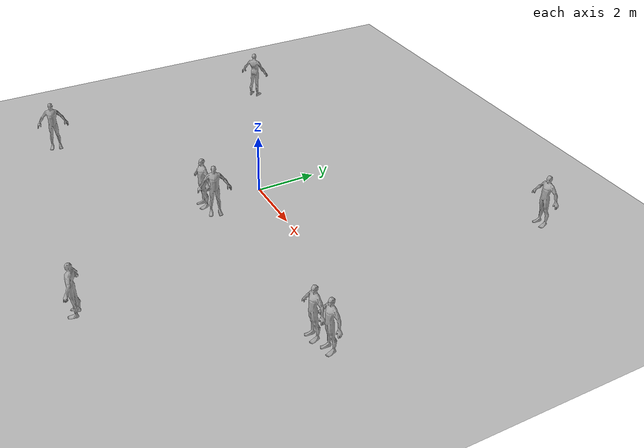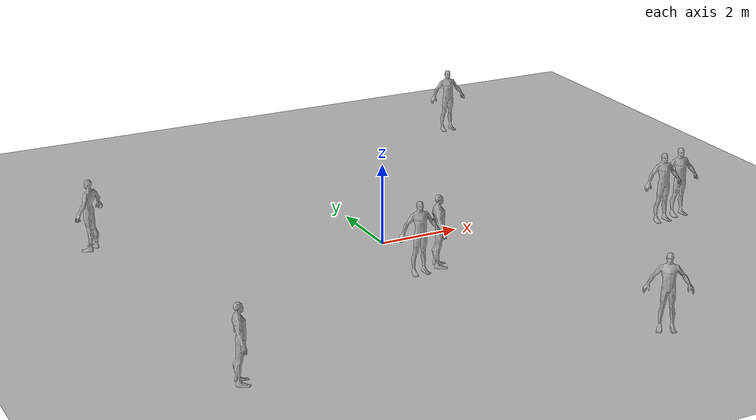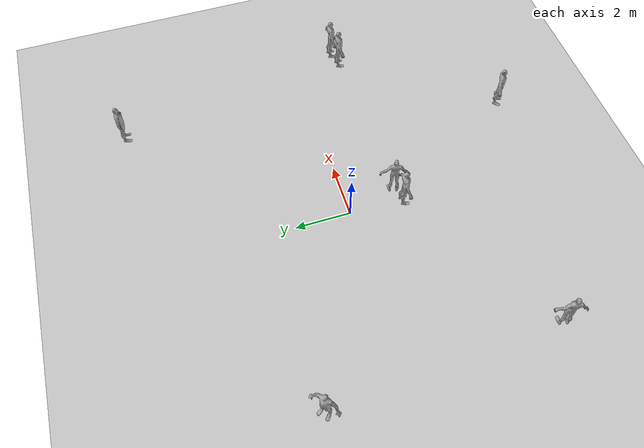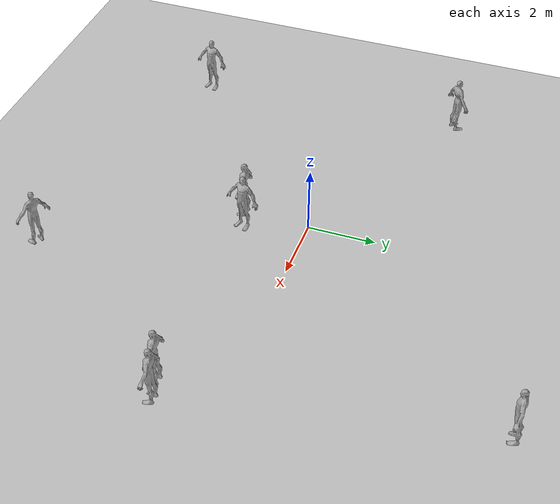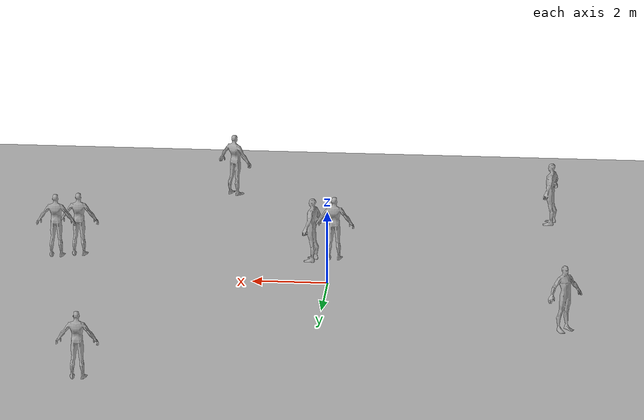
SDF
<sdf version="1.6">
 <world name="default">
  <light name="sun" type="directional">
   <pose>0 0 10 0 -0 0</pose>
   <diffuse>0.8 0.8 0.8 1</diffuse>
   <specular>0.2 0.2 0.2 1</specular>
   <attenuation>
    <range>1000</range>
    <constant>0.9</constant>
    <linear>0.01</linear>
    <quadratic>0.001</quadratic>
   </attenuation>
   <direction>-0.5 0.1 -0.9</direction>
  </light>
  <model name="ground_plane">
   <static>1</static>
   <link name="link">
    <collision name="collision">
     <geometry><plane><normal>0 0 1</normal><size>100 100</size></plane></geometry>
     <surface>
      <contact><collide_bitmask>65535</collide_bitmask></contact>
      <friction><ode><mu>100</mu><mu2>50</mu2></ode></friction>
     </surface>
    </collision>
    <visual name="visual">
     <cast_shadows>0</cast_shadows>
     <geometry><plane><normal>0 0 1</normal><size>100 100</size></plane></geometry>
     <material>
      <script><uri>file://media/materials/scripts/gazebo.material</uri><name>Gazebo/Grey</name></script>
     </material>
    </visual>
   </link>
  </model>
  <gravity>0 0 -9.8</gravity>
  <magnetic_field>6e-06 2.3e-05 -4.2e-05</magnetic_field>
  <atmosphere type="adiabatic"/>
  <physics name="default_physics" default="0" type="ode">
   <max_step_size>0.001</max_step_size>
   <real_time_factor>1</real_time_factor>
   <real_time_update_rate>1000</real_time_update_rate>
  </physics>
  <scene><ambient>0.4 0.4 0.4 1</ambient><background>0.7 0.7 0.7 1</background><shadows>1</shadows></scene>
  <audio><device>default</device></audio>
  <spherical_coordinates>
   <surface_model>EARTH_WGS84</surface_model>
   <latitude_deg>0</latitude_deg>
   <longitude_deg>0</longitude_deg>
   <elevation>0</elevation>
   <heading_deg>0</heading_deg>
  </spherical_coordinates>
  <model name="man">
   <link name="link_0">
    <inertial>
     <mass>1</mass>
     <inertia>
      <ixx>0.166667</ixx>
      <ixy>0</ixy>
      <ixz>0</ixz>
      <iyy>0.166667</iyy>
      <iyz>0</iyz>
      <izz>0.166667</izz>
     </inertia>
    </inertial>
    <visual name="visual">
     <geometry><mesh><uri>model://man/meshes/man.dae</uri><scale>1 1 1</scale></mesh></geometry>
     <material>
      <script>
       <uri>model://man/materials/scripts</uri>
       <uri>model://man/materials/textures</uri>
       <name>People/Man1</name>
      </script>
      <lighting>0</lighting>
     </material>
    </visual>
   </link>
   <static>1</static>
   <pose>-0.038174 -1.9887 0 0 -0 0</pose>
  </model>
  <model name="man_0">
   <link name="link_0">
    <inertial>
     <mass>1</mass>
     <inertia>
      <ixx>0.166667</ixx>
      <ixy>0</ixy>
      <ixz>0</ixz>
      <iyy>0.166667</iyy>
      <iyz>0</iyz>
      <izz>0.166667</izz>
     </inertia>
    </inertial>
    <visual name="visual">
     <geometry><mesh><uri>model://man/meshes/man.dae</uri><scale>1 1 1</scale></mesh></geometry>
     <material>
      <script>
       <uri>model://man/materials/scripts</uri>
       <uri>model://man/materials/textures</uri>
       <name>People/Man1</name>
      </script>
      <lighting>0</lighting>
     </material>
    </visual>
   </link>
   <static>1</static>
   <pose>0.552521 -1.81594 0 0 -0 1.25378</pose>
  </model>
  <model name="man_1">
   <link name="link_0">
    <inertial>
     <mass>1</mass>
     <inertia>
      <ixx>0.166667</ixx>
      <ixy>0</ixy>
      <ixz>0</ixz>
      <iyy>0.166667</iyy>
      <iyz>0</iyz>
      <izz>0.166667</izz>
     </inertia>
    </inertial>
    <visual name="visual">
     <geometry><mesh><uri>model://man/meshes/man.dae</uri><scale>1 1 1</scale></mesh></geometry>
     <material>
      <script>
       <uri>model://man/materials/scripts</uri>
       <uri>model://man/materials/textures</uri>
       <name>People/Man1</name>
      </script>
      <lighting>0</lighting>
     </material>
    </visual>
   </link>
   <static>1</static>
   <pose>5.69942 7.07186 0 0 -0 0</pose>
  </model>
  <model name="man_2">
   <link name="link_0">
    <inertial>
     <mass>1</mass>
     <inertia>
      <ixx>0.166667</ixx>
      <ixy>0</ixy>
      <ixz>0</ixz>
      <iyy>0.166667</iyy>
      <iyz>0</iyz>
      <izz>0.166667</izz>
     </inertia>
    </inertial>
    <visual name="visual">
     <geometry><mesh><uri>model://man/meshes/man.dae</uri><scale>1 1 1</scale></mesh></geometry>
     <material>
      <script>
       <uri>model://man/materials/scripts</uri>
       <uri>model://man/materials/textures</uri>
       <name>People/Man1</name>
      </script>
      <lighting>0</lighting>
     </material>
    </visual>
   </link>
   <static>1</static>
   <pose>-6.32759 2.87718 0 0 0 -2.41427</pose>
  </model>
  <model name="man_3">
   <link name="link_0">
    <inertial>
     <mass>1</mass>
     <inertia>
      <ixx>0.166667</ixx>
      <ixy>0</ixy>
      <ixz>0</ixz>
      <iyy>0.166667</iyy>
      <iyz>0</iyz>
      <izz>0.166667</izz>
     </inertia>
    </inertial>
    <visual name="visual">
     <geometry><mesh><uri>model://man/meshes/man.dae</uri><scale>1 1 1</scale></mesh></geometry>
     <material>
      <script>
       <uri>model://man/materials/scripts</uri>
       <uri>model://man/materials/textures</uri>
       <name>People/Man1</name>
      </script>
      <lighting>0</lighting>
     </material>
    </visual>
   </link>
   <static>1</static>
   <pose>3.17094 -7.10972 0 0 0 -0.533222</pose>
  </model>
  <model name="man_4">
   <link name="link_0">
    <inertial>
     <mass>1</mass>
     <inertia>
      <ixx>0.166667</ixx>
      <ixy>0</ixy>
      <ixz>0</ixz>
      <iyy>0.166667</iyy>
      <iyz>0</iyz>
      <izz>0.166667</izz>
     </inertia>
    </inertial>
    <visual name="visual">
     <geometry><mesh><uri>model://man/meshes/man.dae</uri><scale>1 1 1</scale></mesh></geometry>
     <material>
      <script>
       <uri>model://man/materials/scripts</uri>
       <uri>model://man/materials/textures</uri>
       <name>People/Man1</name>
      </script>
      <lighting>0</lighting>
     </material>
    </visual>
   </link>
   <static>1</static>
   <pose>-5.83939 -5.30502 0 0 -0 1.31692</pose>
  </model>
  <model name="man_5">
   <link name="link_0">
    <inertial>
     <mass>1</mass>
     <inertia>
      <ixx>0.166667</ixx>
      <ixy>0</ixy>
      <ixz>0</ixz>
      <iyy>0.166667</iyy>
      <iyz>0</iyz>
      <izz>0.166667</izz>
     </inertia>
    </inertial>
    <visual name="visual">
     <geometry><mesh><uri>model://man/meshes/man.dae</uri><scale>1 1 1</scale></mesh></geometry>
     <material>
      <script>
       <uri>model://man/materials/scripts</uri>
       <uri>model://man/materials/textures</uri>
       <name>People/Man1</name>
      </script>
      <lighting>0</lighting>
     </material>
    </visual>
   </link>
   <static>1</static>
   <pose>6.9018 -1.77112 0 0 -0 0</pose>
  </model>
  <model name="man_6">
   <link name="link_0">
    <inertial>
     <mass>1</mass>
     <inertia>
      <ixx>0.166667</ixx>
      <ixy>0</ixy>
      <ixz>0</ixz>
      <iyy>0.166667</iyy>
      <iyz>0</iyz>
      <izz>0.166667</izz>
     </inertia>
    </inertial>
    <visual name="visual">
     <geometry><mesh><uri>model://man/meshes/man.dae</uri><scale>1 1 1</scale></mesh></geometry>
     <material>
      <script>
       <uri>model://man/materials/scripts</uri>
       <uri>model://man/materials/textures</uri>
       <name>People/Man1</name>
      </script>
      <lighting>0</lighting>
     </material>
    </visual>
   </link>
   <static>1</static>
   <pose>7.50674 -1.62431 0 0 -0 0</pose>
  </model>
 </world>
</sdf>
